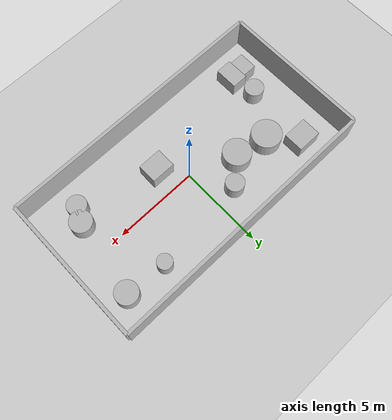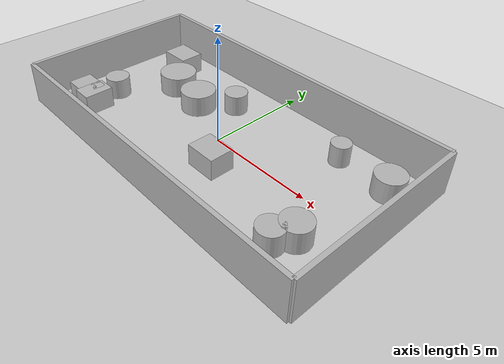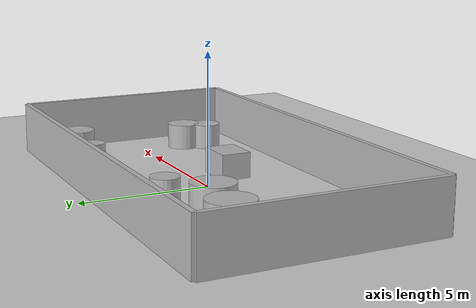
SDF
<?xml version="1.0"?>
<sdf version="1.6">
  <world name="env_22">

    <include><uri>model://ground_plane</uri></include>
    <include><uri>model://sun</uri></include>

    <!-- WALLS -->
    <model name="wall_north"><static>true</static><pose>0 4.393871772944513 1 0 0 0</pose>
      <link name="link"><collision name="collision">
        <geometry><box><size>16.581751692549574 0.2 2</size></box></geometry>
      </collision><visual name="visual">
        <geometry><box><size>16.581751692549574 0.2 2</size></box></geometry>
      </visual></link>
    </model>

    <model name="wall_south"><static>true</static><pose>0 -4.393871772944513 1 0 0 0</pose>
      <link name="link"><collision name="collision">
        <geometry><box><size>16.581751692549574 0.2 2</size></box></geometry>
      </collision><visual name="visual">
        <geometry><box><size>16.581751692549574 0.2 2</size></box></geometry>
      </visual></link>
    </model>

    <model name="wall_east"><static>true</static><pose>8.290875846274787 0 1 0 0 1.57</pose>
      <link name="link"><collision name="collision">
        <geometry><box><size>8.787743545889025 0.2 2</size></box></geometry>
      </collision><visual name="visual">
        <geometry><box><size>8.787743545889025 0.2 2</size></box></geometry>
      </visual></link>
    </model>

    <model name="wall_west"><static>true</static><pose>-8.290875846274787 0 1 0 0 1.57</pose>
      <link name="link"><collision name="collision">
        <geometry><box><size>8.787743545889025 0.2 2</size></box></geometry>
      </collision><visual name="visual">
        <geometry><box><size>8.787743545889025 0.2 2</size></box></geometry>
      </visual></link>
    </model>

    <!-- SENSOR -->

    <model name="lidar_sensor">
      <static>true</static>
      <pose>-3.850192665893761 -1.9113077918149628 0.4 0 0 0</pose>
      <link name="link">
        <sensor name="lidar" type="ray">
          <pose>0 0 0 0 0 0</pose>
          <visualize>true</visualize>
          <always_on>true</always_on>
          <update_rate>10</update_rate>
          <ray>
            <scan><horizontal>
              <samples>90</samples>
              <resolution>1</resolution>
              <min_angle>-3.14159</min_angle>
              <max_angle>3.14159</max_angle>
            </horizontal></scan>
            <range><min>0.15</min><max>20.0</max><resolution>0.01</resolution></range>
          </ray>
          <plugin name="lidar_plugin" filename="liblidar_plugin.so"/>
        </sensor>
      </link>
    </model>

    <!-- OBSTACLES -->

    <model name="obstacle_0">
      <static>true</static>
      <pose>-2.647398710435316 1.0750927391295964 0.5 0 0 0</pose>
      <link name="link">
        <collision name="collision">
          <geometry><cylinder><radius>0.84</radius><length>1.0</length></cylinder></geometry>
        </collision>
        <visual name="visual">
          <geometry><cylinder><radius>0.84</radius><length>1.0</length></cylinder></geometry>
        </visual>
      </link>
    </model>

    <model name="obstacle_1">
      <static>true</static>
      <pose>-6.244713897171561 -1.1111367344017151 0.5 0 0 0</pose>
      <link name="link">
        <collision name="collision">
          <geometry><cylinder><radius>0.57</radius><length>1.0</length></cylinder></geometry>
        </collision>
        <visual name="visual">
          <geometry><cylinder><radius>0.57</radius><length>1.0</length></cylinder></geometry>
        </visual>
      </link>
    </model>

    <model name="obstacle_2">
      <static>true</static>
      <pose>6.933093516651944 2.672725021984297 0.5 0 0 0</pose>
      <link name="link">
        <collision name="collision">
          <geometry><cylinder><radius>0.67</radius><length>1.0</length></cylinder></geometry>
        </collision>
        <visual name="visual">
          <geometry><cylinder><radius>0.67</radius><length>1.0</length></cylinder></geometry>
        </visual>
      </link>
    </model>

    <model name="obstacle_3">
      <static>true</static>
      <pose>-4.641317326457881 1.4248358426564867 0.5 0 0 0</pose>
      <link name="link">
        <collision name="collision">
          <geometry><cylinder><radius>0.89</radius><length>1.0</length></cylinder></geometry>
        </collision>
        <visual name="visual">
          <geometry><cylinder><radius>0.89</radius><length>1.0</length></cylinder></geometry>
        </visual>
      </link>
    </model>

    <model name="obstacle_4">
      <static>true</static>
      <pose>-6.041413028493112 2.836506271755046 0.5 0 0 0</pose>
      <link name="link">
        <collision name="collision">
          <geometry><box><size>1.47 1.2 1.0</size></box></geometry>
        </collision>
        <visual name="visual">
          <geometry><box><size>1.47 1.2 1.0</size></box></geometry>
        </visual>
      </link>
    </model>

    <model name="obstacle_5">
      <static>true</static>
      <pose>4.447816447917031 2.839541870229457 0.5 0 0 0</pose>
      <link name="link">
        <collision name="collision">
          <geometry><cylinder><radius>0.45</radius><length>1.0</length></cylinder></geometry>
        </collision>
        <visual name="visual">
          <geometry><cylinder><radius>0.45</radius><length>1.0</length></cylinder></geometry>
        </visual>
      </link>
    </model>

    <model name="obstacle_6">
      <static>true</static>
      <pose>-1.2874356183615534 2.2672414979235453 0.5 0 0 0</pose>
      <link name="link">
        <collision name="collision">
          <geometry><cylinder><radius>0.55</radius><length>1.0</length></cylinder></geometry>
        </collision>
        <visual name="visual">
          <geometry><cylinder><radius>0.55</radius><length>1.0</length></cylinder></geometry>
        </visual>
      </link>
    </model>

    <model name="obstacle_7">
      <static>true</static>
      <pose>6.207098510803052 -1.819171352964573 0.5 0 0 0</pose>
      <link name="link">
        <collision name="collision">
          <geometry><cylinder><radius>0.66</radius><length>1.0</length></cylinder></geometry>
        </collision>
        <visual name="visual">
          <geometry><cylinder><radius>0.66</radius><length>1.0</length></cylinder></geometry>
        </visual>
      </link>
    </model>

    <model name="obstacle_8">
      <static>true</static>
      <pose>1.1485500819109689 -1.394640961970957 0.5 0 0 0</pose>
      <link name="link">
        <collision name="collision">
          <geometry><box><size>1.44 1.18 1.0</size></box></geometry>
        </collision>
        <visual name="visual">
          <geometry><box><size>1.44 1.18 1.0</size></box></geometry>
        </visual>
      </link>
    </model>

    <model name="obstacle_9">
      <static>true</static>
      <pose>-5.932190772885132 -2.6317416321923424 0.5 0 0 0</pose>
      <link name="link">
        <collision name="collision">
          <geometry><box><size>0.97 1.38 1.0</size></box></geometry>
        </collision>
        <visual name="visual">
          <geometry><box><size>0.97 1.38 1.0</size></box></geometry>
        </visual>
      </link>
    </model>

    <model name="obstacle_10">
      <static>true</static>
      <pose>5.782370645597473 -2.6763470076368483 0.5 0 0 0</pose>
      <link name="link">
        <collision name="collision">
          <geometry><cylinder><radius>0.58</radius><length>1.0</length></cylinder></geometry>
        </collision>
        <visual name="visual">
          <geometry><cylinder><radius>0.58</radius><length>1.0</length></cylinder></geometry>
        </visual>
      </link>
    </model>

    <model name="obstacle_11">
      <static>true</static>
      <pose>-6.5693090869617485 -2.616008299509561 0.5 0 0 0</pose>
      <link name="link">
        <collision name="collision">
          <geometry><box><size>1.4 1.11 1.0</size></box></geometry>
        </collision>
        <visual name="visual">
          <geometry><box><size>1.4 1.11 1.0</size></box></geometry>
        </visual>
      </link>
    </model>

  </world>
</sdf>
